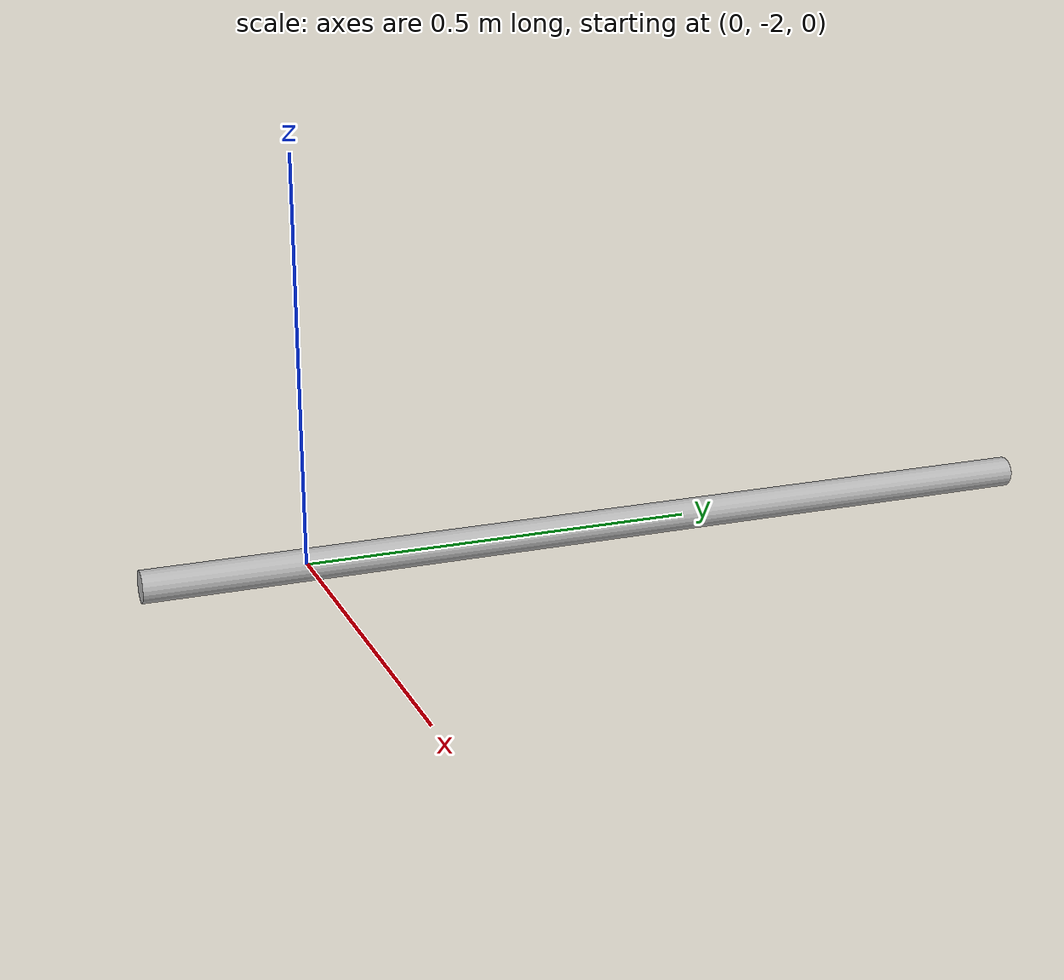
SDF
<?xml version="1.0" ?>
<sdf version="1.5">
        <model name="pendulum">
            <pose>0 -1.0 0 0.0 0.0 0.0</pose>
            <static>false</static>

            <link name="pole">
                <pose>0.0 0.0 0.0 0 0.0 0.0</pose>
                <inertial>
                    <mass>10</mass>
                </inertial>
                <visual>
                    <pose>0.0 -0.60 0.0 -1.57079632679 0.0 0.0</pose>
                    <geometry>
                        <cylinder>
                            <length>1.2</length>
                            <radius>0.02</radius>
                        </cylinder>
                    </geometry>
                </visual>
                <visual_shape>
                    <pose>0.0 -0.60 0.0 -1.57079632679 0.0 0.0</pose>
                    <geometry>
                        <cylinder>
                            <length>1.2</length>
                            <radius>0.02</radius>
                        </cylinder>
                    </geometry>
                </visual_shape>
            </link>

            <link name="pole_aux">
                <pose> 0.0 0 0 0 0 0</pose>
                <inertial>
                    <mass>0.000001</mass>
                </inertial>
            </link>

            <joint type="prismatic" name="j_axis_x">
                <parent>world</parent>
                <child>pole_aux</child>
                <axis>
                      <xyz>1.0 0.0 0.0</xyz>
                </axis>
            </joint>

            <joint type="revolute" name="j_pole">
                <parent>pole_aux</parent>
                <child>pole</child>
                <axis>
                      <xyz>0.0 0.0 1.0</xyz>
                      <dynamics>
                          <damping>1.0</damping>
                      </dynamics>
                </axis>
            </joint>

        </model>
</sdf>
